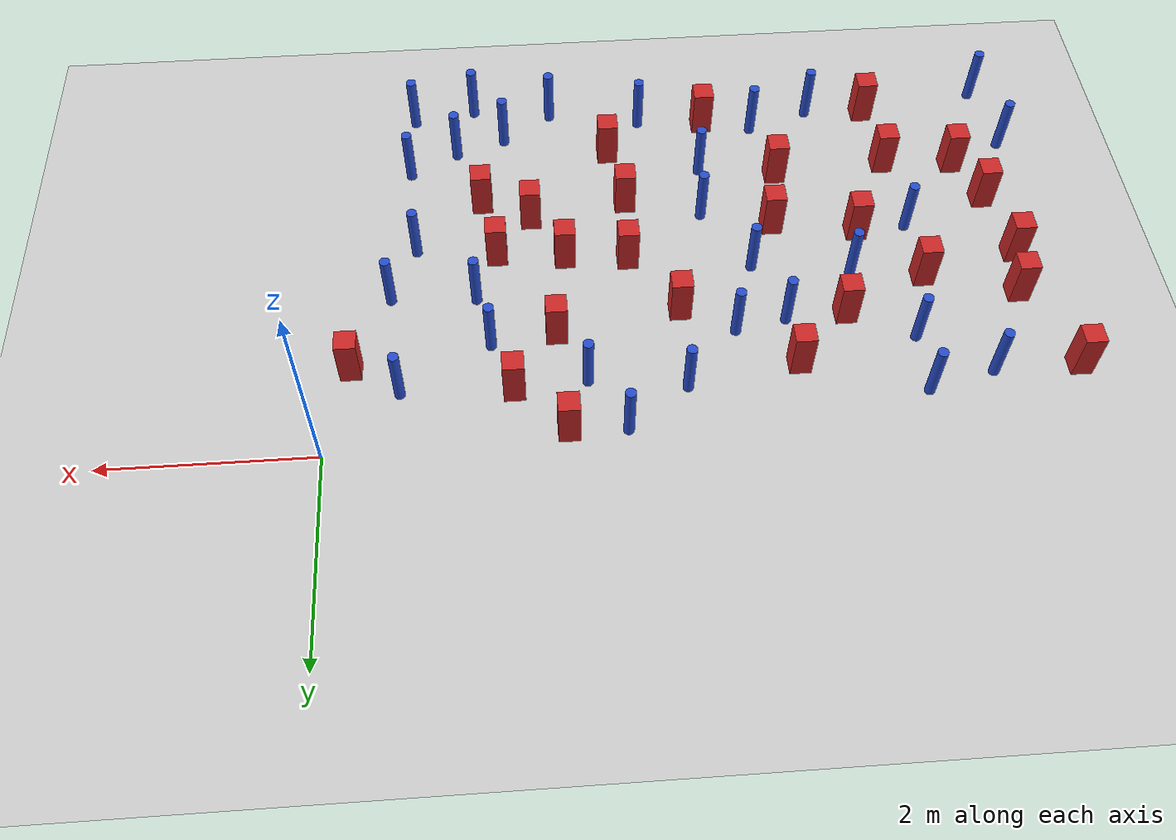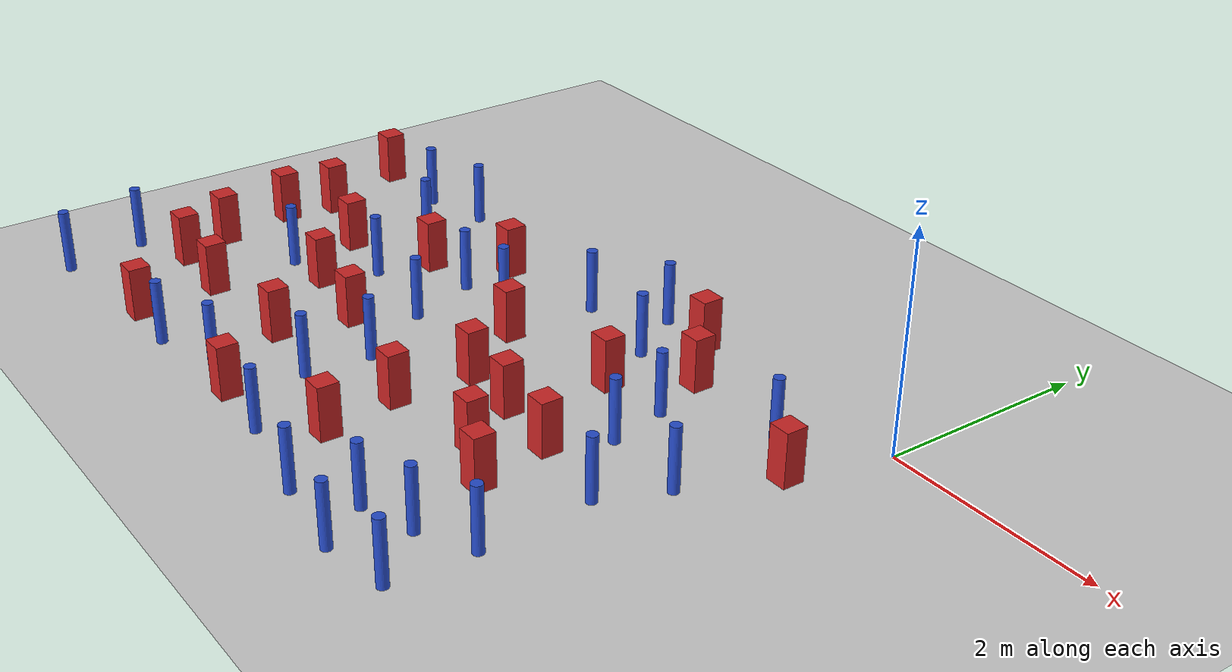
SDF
<sdf version="1.6">
 <world name="default">
  <model name="ground_plane">
   <static>1</static>
   <link name="link">
    <collision name="collision">
     <geometry><plane><normal>0 0 1</normal><size>100 100</size></plane></geometry>
     <surface><friction><ode><mu>100</mu><mu2>50</mu2></ode></friction></surface>
    </collision>
    <visual name="visual">
     <cast_shadows>0</cast_shadows>
     <geometry><plane><normal>0 0 1</normal><size>100 100</size></plane></geometry>
     <material>
      <ambient>1.0 1.0 1.0 1.0</ambient>
      <diffuse>0.8 0.8 0.8 1.0</diffuse>
      <specular>0.01 0.01 0.01 1.000000</specular>
     </material>
    </visual>
   </link>
  </model>
  <model name="square_post_obstacle0">
   <static>true</static>
   <pose>-5.72920448468 -1.64838649978 1.91545236811e-07 -7.35059704564e-06 1.12565212e-07 2.39332434364e-05</pose>
   <link name="link">
    <pose>0 0 0.25 0 -0 0</pose>
    <inertial>
     <mass>100</mass>
     <inertia>
      <ixx>0.166667</ixx>
      <ixy>0</ixy>
      <ixz>0</ixz>
      <iyy>0.166667</iyy>
      <iyz>0</iyz>
      <izz>0.166667</izz>
     </inertia>
    </inertial>
    <collision name="collision"><geometry><box><size>.2 .2 .5</size></box></geometry></collision>
    <visual name="visual">
     <geometry><box><size>.2 .2 .5</size></box></geometry>
     <material>
      <script><name>Gazebo/Red</name><uri>file://media/materials/scripts/gazebo.material</uri></script>
     </material>
    </visual>
   </link>
  </model>
  <model name="square_post_obstacle10">
   <static>true</static>
   <pose>-2.15162310492 -1.19387111334 1.91545236811e-07 -7.35059704564e-06 1.12565212e-07 2.39332434364e-05</pose>
   <link name="link">
    <pose>0 0 0.25 0 -0 0</pose>
    <inertial>
     <mass>100</mass>
     <inertia>
      <ixx>0.166667</ixx>
      <ixy>0</ixy>
      <ixz>0</ixz>
      <iyy>0.166667</iyy>
      <iyz>0</iyz>
      <izz>0.166667</izz>
     </inertia>
    </inertial>
    <collision name="collision"><geometry><box><size>.2 .2 .5</size></box></geometry></collision>
    <visual name="visual">
     <geometry><box><size>.2 .2 .5</size></box></geometry>
     <material>
      <script><name>Gazebo/Red</name><uri>file://media/materials/scripts/gazebo.material</uri></script>
     </material>
    </visual>
   </link>
  </model>
  <model name="pole_obstacle8">
   <static>true</static>
   <pose>-5.04666065523 -1.76279516387 7.38925637345e-09 -8.471706928e-08 1.24976765134e-08 -1.74513093015e-07</pose>
   <link name="link">
    <pose>0 0 0.3 0 -0 0</pose>
    <inertial>
     <mass>1</mass>
     <inertia><ixx>0.145833</ixx><ixy>0</ixy><ixz>0</ixz><iyy>0.145833</iyy><iyz>0</iyz><izz>0.125</izz></inertia>
    </inertial>
    <collision name="collision">
     <geometry><cylinder><radius>0.05</radius><length>.6</length></cylinder></geometry>
    </collision>
    <visual name="visual">
     <geometry><cylinder><radius>0.05</radius><length>.6</length></cylinder></geometry>
     <material>
      <script><name>Gazebo/Blue</name><uri>file://media/materials/scripts/gazebo.material</uri></script>
     </material>
    </visual>
   </link>
  </model>
  <model name="square_post_obstacle17">
   <static>true</static>
   <pose>-3.33447959467 -1.3979767333 1.91545236811e-07 -7.35059704564e-06 1.12565212e-07 2.39332434364e-05</pose>
   <link name="link">
    <pose>0 0 0.25 0 -0 0</pose>
    <inertial>
     <mass>100</mass>
     <inertia>
      <ixx>0.166667</ixx>
      <ixy>0</ixy>
      <ixz>0</ixz>
      <iyy>0.166667</iyy>
      <iyz>0</iyz>
      <izz>0.166667</izz>
     </inertia>
    </inertial>
    <collision name="collision"><geometry><box><size>.2 .2 .5</size></box></geometry></collision>
    <visual name="visual">
     <geometry><box><size>.2 .2 .5</size></box></geometry>
     <material>
      <script><name>Gazebo/Red</name><uri>file://media/materials/scripts/gazebo.material</uri></script>
     </material>
    </visual>
   </link>
  </model>
  <model name="square_post_obstacle28">
   <static>true</static>
   <pose>-1.73148544945 -0.581434706259 1.91545236811e-07 -7.35059704564e-06 1.12565212e-07 2.39332434364e-05</pose>
   <link name="link">
    <pose>0 0 0.25 0 -0 0</pose>
    <inertial>
     <mass>100</mass>
     <inertia>
      <ixx>0.166667</ixx>
      <ixy>0</ixy>
      <ixz>0</ixz>
      <iyy>0.166667</iyy>
      <iyz>0</iyz>
      <izz>0.166667</izz>
     </inertia>
    </inertial>
    <collision name="collision"><geometry><box><size>.2 .2 .5</size></box></geometry></collision>
    <visual name="visual">
     <geometry><box><size>.2 .2 .5</size></box></geometry>
     <material>
      <script><name>Gazebo/Red</name><uri>file://media/materials/scripts/gazebo.material</uri></script>
     </material>
    </visual>
   </link>
  </model>
  <model name="pole_obstacle19">
   <static>true</static>
   <pose>-5.52111678165 -0.942819344106 7.38925637345e-09 -8.47170692799e-08 1.24976765038e-08 -1.74513093018e-07</pose>
   <link name="link">
    <pose>0 0 0.3 0 -0 0</pose>
    <inertial>
     <mass>1</mass>
     <inertia><ixx>0.145833</ixx><ixy>0</ixy><ixz>0</ixz><iyy>0.145833</iyy><iyz>0</iyz><izz>0.125</izz></inertia>
    </inertial>
    <collision name="collision">
     <geometry><cylinder><radius>0.05</radius><length>.6</length></cylinder></geometry>
    </collision>
    <visual name="visual">
     <geometry><cylinder><radius>0.05</radius><length>.6</length></cylinder></geometry>
     <material>
      <script><name>Gazebo/Blue</name><uri>file://media/materials/scripts/gazebo.material</uri></script>
     </material>
    </visual>
   </link>
  </model>
  <model name="pole_obstacle20">
   <static>true</static>
   <pose>-4.09395837599 -1.89209507379 7.38925637345e-09 -8.471706928e-08 1.24976765134e-08 -1.74513093015e-07</pose>
   <link name="link">
    <pose>0 0 0.3 0 -0 0</pose>
    <inertial>
     <mass>1</mass>
     <inertia><ixx>0.145833</ixx><ixy>0</ixy><ixz>0</ixz><iyy>0.145833</iyy><iyz>0</iyz><izz>0.125</izz></inertia>
    </inertial>
    <collision name="collision">
     <geometry><cylinder><radius>0.05</radius><length>.6</length></cylinder></geometry>
    </collision>
    <visual name="visual">
     <geometry><cylinder><radius>0.05</radius><length>.6</length></cylinder></geometry>
     <material>
      <script><name>Gazebo/Blue</name><uri>file://media/materials/scripts/gazebo.material</uri></script>
     </material>
    </visual>
   </link>
  </model>
  <model name="square_post_obstacle31">
   <static>true</static>
   <pose>-4.49965373307 -3.09009445018 1.91545236811e-07 -7.35059704564e-06 1.12565212e-07 2.39332434364e-05</pose>
   <link name="link">
    <pose>0 0 0.25 0 -0 0</pose>
    <inertial>
     <mass>100</mass>
     <inertia>
      <ixx>0.166667</ixx>
      <ixy>0</ixy>
      <ixz>0</ixz>
      <iyy>0.166667</iyy>
      <iyz>0</iyz>
      <izz>0.166667</izz>
     </inertia>
    </inertial>
    <collision name="collision"><geometry><box><size>.2 .2 .5</size></box></geometry></collision>
    <visual name="visual">
     <geometry><box><size>.2 .2 .5</size></box></geometry>
     <material>
      <script><name>Gazebo/Red</name><uri>file://media/materials/scripts/gazebo.material</uri></script>
     </material>
    </visual>
   </link>
  </model>
  <model name="pole_obstacle29">
   <static>true</static>
   <pose>-0.687403673384 -0.622167887087 7.38925637345e-09 -8.47170692799e-08 1.24976765008e-08 -1.7451309302e-07</pose>
   <link name="link">
    <pose>0 0 0.3 0 -0 0</pose>
    <inertial>
     <mass>1</mass>
     <inertia><ixx>0.145833</ixx><ixy>0</ixy><ixz>0</ixz><iyy>0.145833</iyy><iyz>0</iyz><izz>0.125</izz></inertia>
    </inertial>
    <collision name="collision">
     <geometry><cylinder><radius>0.05</radius><length>.6</length></cylinder></geometry>
    </collision>
    <visual name="visual">
     <geometry><cylinder><radius>0.05</radius><length>.6</length></cylinder></geometry>
     <material>
      <script><name>Gazebo/Blue</name><uri>file://media/materials/scripts/gazebo.material</uri></script>
     </material>
    </visual>
   </link>
  </model>
  <model name="pole_obstacle34">
   <static>true</static>
   <pose>-6.78365782289 -4.12250271945 7.38925637345e-09 -8.47170692796e-08 1.24976764786e-08 -1.74513093032e-07</pose>
   <link name="link">
    <pose>0 0 0.3 0 -0 0</pose>
    <inertial>
     <mass>1</mass>
     <inertia><ixx>0.145833</ixx><ixy>0</ixy><ixz>0</ixz><iyy>0.145833</iyy><iyz>0</iyz><izz>0.125</izz></inertia>
    </inertial>
    <collision name="collision">
     <geometry><cylinder><radius>0.05</radius><length>.6</length></cylinder></geometry>
    </collision>
    <visual name="visual">
     <geometry><cylinder><radius>0.05</radius><length>.6</length></cylinder></geometry>
     <material>
      <script><name>Gazebo/Blue</name><uri>file://media/materials/scripts/gazebo.material</uri></script>
     </material>
    </visual>
   </link>
  </model>
  <model name="pole_obstacle35">
   <static>true</static>
   <pose>-3.73288253168 -3.20610702957 7.38925637345e-09 -8.47170692798e-08 1.24976764939e-08 -1.74513093025e-07</pose>
   <link name="link">
    <pose>0 0 0.3 0 -0 0</pose>
    <inertial>
     <mass>1</mass>
     <inertia><ixx>0.145833</ixx><ixy>0</ixy><ixz>0</ixz><iyy>0.145833</iyy><iyz>0</iyz><izz>0.125</izz></inertia>
    </inertial>
    <collision name="collision">
     <geometry><cylinder><radius>0.05</radius><length>.6</length></cylinder></geometry>
    </collision>
    <visual name="visual">
     <geometry><cylinder><radius>0.05</radius><length>.6</length></cylinder></geometry>
     <material>
      <script><name>Gazebo/Blue</name><uri>file://media/materials/scripts/gazebo.material</uri></script>
     </material>
    </visual>
   </link>
  </model>
  <model name="pole_obstacle36">
   <static>true</static>
   <pose>-3.31737687525 -0.521444200236 7.38925637345e-09 -8.471706928e-08 1.24976765186e-08 -1.74513093012e-07</pose>
   <link name="link">
    <pose>0 0 0.3 0 -0 0</pose>
    <inertial>
     <mass>1</mass>
     <inertia><ixx>0.145833</ixx><ixy>0</ixy><ixz>0</ixz><iyy>0.145833</iyy><iyz>0</iyz><izz>0.125</izz></inertia>
    </inertial>
    <collision name="collision">
     <geometry><cylinder><radius>0.05</radius><length>.6</length></cylinder></geometry>
    </collision>
    <visual name="visual">
     <geometry><cylinder><radius>0.05</radius><length>.6</length></cylinder></geometry>
     <material>
      <script><name>Gazebo/Blue</name><uri>file://media/materials/scripts/gazebo.material</uri></script>
     </material>
    </visual>
   </link>
  </model>
  <model name="pole_obstacle42">
   <static>true</static>
   <pose>-6.15092046541 -0.501168692159 7.38925637345e-09 -8.47170692798e-08 1.24976765005e-08 -1.74513093021e-07</pose>
   <link name="link">
    <pose>0 0 0.3 0 -0 0</pose>
    <inertial>
     <mass>1</mass>
     <inertia><ixx>0.145833</ixx><ixy>0</ixy><ixz>0</ixz><iyy>0.145833</iyy><iyz>0</iyz><izz>0.125</izz></inertia>
    </inertial>
    <collision name="collision">
     <geometry><cylinder><radius>0.05</radius><length>.6</length></cylinder></geometry>
    </collision>
    <visual name="visual">
     <geometry><cylinder><radius>0.05</radius><length>.6</length></cylinder></geometry>
     <material>
      <script><name>Gazebo/Blue</name><uri>file://media/materials/scripts/gazebo.material</uri></script>
     </material>
    </visual>
   </link>
  </model>
  <model name="square_post_obstacle44">
   <static>true</static>
   <pose>-5.62964949551 -3.16195798324 1.91545236811e-07 -7.35059704564e-06 1.12565212e-07 2.39332434364e-05</pose>
   <link name="link">
    <pose>0 0 0.25 0 -0 0</pose>
    <inertial>
     <mass>100</mass>
     <inertia>
      <ixx>0.166667</ixx>
      <ixy>0</ixy>
      <ixz>0</ixz>
      <iyy>0.166667</iyy>
      <iyz>0</iyz>
      <izz>0.166667</izz>
     </inertia>
    </inertial>
    <collision name="collision"><geometry><box><size>.2 .2 .5</size></box></geometry></collision>
    <visual name="visual">
     <geometry><box><size>.2 .2 .5</size></box></geometry>
     <material>
      <script><name>Gazebo/Red</name><uri>file://media/materials/scripts/gazebo.material</uri></script>
     </material>
    </visual>
   </link>
  </model>
  <model name="square_post_obstacle45">
   <static>true</static>
   <pose>-2.2012388608 -0.115494778639 1.91545236811e-07 -7.35059704564e-06 1.12565212e-07 2.39332434364e-05</pose>
   <link name="link">
    <pose>0 0 0.25 0 -0 0</pose>
    <inertial>
     <mass>100</mass>
     <inertia>
      <ixx>0.166667</ixx>
      <ixy>0</ixy>
      <ixz>0</ixz>
      <iyy>0.166667</iyy>
      <iyz>0</iyz>
      <izz>0.166667</izz>
     </inertia>
    </inertial>
    <collision name="collision"><geometry><box><size>.2 .2 .5</size></box></geometry></collision>
    <visual name="visual">
     <geometry><box><size>.2 .2 .5</size></box></geometry>
     <material>
      <script><name>Gazebo/Red</name><uri>file://media/materials/scripts/gazebo.material</uri></script>
     </material>
    </visual>
   </link>
  </model>
  <model name="pole_obstacle56">
   <static>true</static>
   <pose>-0.594704471884 -1.71230368563 7.38925637345e-09 -8.47170692799e-08 1.24976765033e-08 -1.7451309302e-07</pose>
   <link name="link">
    <pose>0 0 0.3 0 -0 0</pose>
    <inertial>
     <mass>1</mass>
     <inertia><ixx>0.145833</ixx><ixy>0</ixy><ixz>0</ixz><iyy>0.145833</iyy><iyz>0</iyz><izz>0.125</izz></inertia>
    </inertial>
    <collision name="collision">
     <geometry><cylinder><radius>0.05</radius><length>.6</length></cylinder></geometry>
    </collision>
    <visual name="visual">
     <geometry><cylinder><radius>0.05</radius><length>.6</length></cylinder></geometry>
     <material>
      <script><name>Gazebo/Blue</name><uri>file://media/materials/scripts/gazebo.material</uri></script>
     </material>
    </visual>
   </link>
  </model>
  <model name="pole_obstacle64">
   <static>true</static>
   <pose>-3.17033049402 -3.93762024587 7.38925637345e-09 -8.47170692798e-08 1.24976764939e-08 -1.74513093025e-07</pose>
   <link name="link">
    <pose>0 0 0.3 0 -0 0</pose>
    <inertial>
     <mass>1</mass>
     <inertia><ixx>0.145833</ixx><ixy>0</ixy><ixz>0</ixz><iyy>0.145833</iyy><iyz>0</iyz><izz>0.125</izz></inertia>
    </inertial>
    <collision name="collision">
     <geometry><cylinder><radius>0.05</radius><length>.6</length></cylinder></geometry>
    </collision>
    <visual name="visual">
     <geometry><cylinder><radius>0.05</radius><length>.6</length></cylinder></geometry>
     <material>
      <script><name>Gazebo/Blue</name><uri>file://media/materials/scripts/gazebo.material</uri></script>
     </material>
    </visual>
   </link>
  </model>
  <model name="pole_obstacle65">
   <static>true</static>
   <pose>-4.33033968657 -1.22837742214 7.38925637345e-09 -8.471706928e-08 1.24976765134e-08 -1.74513093015e-07</pose>
   <link name="link">
    <pose>0 0 0.3 0 -0 0</pose>
    <inertial>
     <mass>1</mass>
     <inertia><ixx>0.145833</ixx><ixy>0</ixy><ixz>0</ixz><iyy>0.145833</iyy><iyz>0</iyz><izz>0.125</izz></inertia>
    </inertial>
    <collision name="collision">
     <geometry><cylinder><radius>0.05</radius><length>.6</length></cylinder></geometry>
    </collision>
    <visual name="visual">
     <geometry><cylinder><radius>0.05</radius><length>.6</length></cylinder></geometry>
     <material>
      <script><name>Gazebo/Blue</name><uri>file://media/materials/scripts/gazebo.material</uri></script>
     </material>
    </visual>
   </link>
  </model>
  <model name="square_post_obstacle74">
   <static>true</static>
   <pose>-5.55989128321 -3.92422061794 1.91545236811e-07 -7.35059704564e-06 1.12565212e-07 2.39332434364e-05</pose>
   <link name="link">
    <pose>0 0 0.25 0 -0 0</pose>
    <inertial>
     <mass>100</mass>
     <inertia>
      <ixx>0.166667</ixx>
      <ixy>0</ixy>
      <ixz>0</ixz>
      <iyy>0.166667</iyy>
      <iyz>0</iyz>
      <izz>0.166667</izz>
     </inertia>
    </inertial>
    <collision name="collision"><geometry><box><size>.2 .2 .5</size></box></geometry></collision>
    <visual name="visual">
     <geometry><box><size>.2 .2 .5</size></box></geometry>
     <material>
      <script><name>Gazebo/Red</name><uri>file://media/materials/scripts/gazebo.material</uri></script>
     </material>
    </visual>
   </link>
  </model>
  <model name="pole_obstacle73">
   <static>true</static>
   <pose>-5.69657453276 -2.30692473391 7.38925637345e-09 -8.47170692798e-08 1.24976764937e-08 -1.74513093023e-07</pose>
   <link name="link">
    <pose>0 0 0.3 0 -0 0</pose>
    <inertial>
     <mass>1</mass>
     <inertia><ixx>0.145833</ixx><ixy>0</ixy><ixz>0</ixz><iyy>0.145833</iyy><iyz>0</iyz><izz>0.125</izz></inertia>
    </inertial>
    <collision name="collision">
     <geometry><cylinder><radius>0.05</radius><length>.6</length></cylinder></geometry>
    </collision>
    <visual name="visual">
     <geometry><cylinder><radius>0.05</radius><length>.6</length></cylinder></geometry>
     <material>
      <script><name>Gazebo/Blue</name><uri>file://media/materials/scripts/gazebo.material</uri></script>
     </material>
    </visual>
   </link>
  </model>
  <model name="square_post_obstacle82">
   <static>true</static>
   <pose>-1.62501234831 -2.18435911279 1.91545236811e-07 -7.35059704564e-06 1.12565212e-07 2.39332434364e-05</pose>
   <link name="link">
    <pose>0 0 0.25 0 -0 0</pose>
    <inertial>
     <mass>100</mass>
     <inertia>
      <ixx>0.166667</ixx>
      <ixy>0</ixy>
      <ixz>0</ixz>
      <iyy>0.166667</iyy>
      <iyz>0</iyz>
      <izz>0.166667</izz>
     </inertia>
    </inertial>
    <collision name="collision"><geometry><box><size>.2 .2 .5</size></box></geometry></collision>
    <visual name="visual">
     <geometry><box><size>.2 .2 .5</size></box></geometry>
     <material>
      <script><name>Gazebo/Red</name><uri>file://media/materials/scripts/gazebo.material</uri></script>
     </material>
    </visual>
   </link>
  </model>
  <model name="pole_obstacle100">
   <static>true</static>
   <pose>-6.91055289313 -3.36562437993 7.38925637345e-09 -8.47170692798e-08 1.24976764937e-08 -1.74513093023e-07</pose>
   <link name="link">
    <pose>0 0 0.3 0 -0 0</pose>
    <inertial>
     <mass>1</mass>
     <inertia><ixx>0.145833</ixx><ixy>0</ixy><ixz>0</ixz><iyy>0.145833</iyy><iyz>0</iyz><izz>0.125</izz></inertia>
    </inertial>
    <collision name="collision">
     <geometry><cylinder><radius>0.05</radius><length>.6</length></cylinder></geometry>
    </collision>
    <visual name="visual">
     <geometry><cylinder><radius>0.05</radius><length>.6</length></cylinder></geometry>
     <material>
      <script><name>Gazebo/Blue</name><uri>file://media/materials/scripts/gazebo.material</uri></script>
     </material>
    </visual>
   </link>
  </model>
  <model name="square_post_obstacle90">
   <static>true</static>
   <pose>-1.49911255548 -2.87933829624 1.91545236811e-07 -7.35059704564e-06 1.12565212e-07 2.39332434364e-05</pose>
   <link name="link">
    <pose>0 0 0.25 0 -0 0</pose>
    <inertial>
     <mass>100</mass>
     <inertia>
      <ixx>0.166667</ixx>
      <ixy>0</ixy>
      <ixz>0</ixz>
      <iyy>0.166667</iyy>
      <iyz>0</iyz>
      <izz>0.166667</izz>
     </inertia>
    </inertial>
    <collision name="collision"><geometry><box><size>.2 .2 .5</size></box></geometry></collision>
    <visual name="visual">
     <geometry><box><size>.2 .2 .5</size></box></geometry>
     <material>
      <script><name>Gazebo/Red</name><uri>file://media/materials/scripts/gazebo.material</uri></script>
     </material>
    </visual>
   </link>
  </model>
  <model name="pole_obstacle113">
   <static>true</static>
   <pose>-0.822009932886 -4.09908080248 7.38925637345e-09 -8.471706928e-08 1.24976765086e-08 -1.74513093015e-07</pose>
   <link name="link">
    <pose>0 0 0.3 0 -0 0</pose>
    <inertial>
     <mass>1</mass>
     <inertia><ixx>0.145833</ixx><ixy>0</ixy><ixz>0</ixz><iyy>0.145833</iyy><iyz>0</iyz><izz>0.125</izz></inertia>
    </inertial>
    <collision name="collision">
     <geometry><cylinder><radius>0.05</radius><length>.6</length></cylinder></geometry>
    </collision>
    <visual name="visual">
     <geometry><cylinder><radius>0.05</radius><length>.6</length></cylinder></geometry>
     <material>
      <script><name>Gazebo/Blue</name><uri>file://media/materials/scripts/gazebo.material</uri></script>
     </material>
    </visual>
   </link>
  </model>
  <model name="square_post_obstacle101">
   <static>true</static>
   <pose>-6.33982332221 -3.11323257354 1.91545236811e-07 -7.35059704564e-06 1.12565212e-07 2.39332434364e-05</pose>
   <link name="link">
    <pose>0 0 0.25 0 -0 0</pose>
    <inertial>
     <mass>100</mass>
     <inertia>
      <ixx>0.166667</ixx>
      <ixy>0</ixy>
      <ixz>0</ixz>
      <iyy>0.166667</iyy>
      <iyz>0</iyz>
      <izz>0.166667</izz>
     </inertia>
    </inertial>
    <collision name="collision"><geometry><box><size>.2 .2 .5</size></box></geometry></collision>
    <visual name="visual">
     <geometry><box><size>.2 .2 .5</size></box></geometry>
     <material>
      <script><name>Gazebo/Red</name><uri>file://media/materials/scripts/gazebo.material</uri></script>
     </material>
    </visual>
   </link>
  </model>
  <model name="pole_obstacle118">
   <static>true</static>
   <pose>-1.2551986138 -3.59517480096 7.38925637345e-09 -8.47170692799e-08 1.24976765053e-08 -1.74513093017e-07</pose>
   <link name="link">
    <pose>0 0 0.3 0 -0 0</pose>
    <inertial>
     <mass>1</mass>
     <inertia><ixx>0.145833</ixx><ixy>0</ixy><ixz>0</ixz><iyy>0.145833</iyy><iyz>0</iyz><izz>0.125</izz></inertia>
    </inertial>
    <collision name="collision">
     <geometry><cylinder><radius>0.05</radius><length>.6</length></cylinder></geometry>
    </collision>
    <visual name="visual">
     <geometry><cylinder><radius>0.05</radius><length>.6</length></cylinder></geometry>
     <material>
      <script><name>Gazebo/Blue</name><uri>file://media/materials/scripts/gazebo.material</uri></script>
     </material>
    </visual>
   </link>
  </model>
  <model name="square_post_obstacle105">
   <static>true</static>
   <pose>-4.36935392854 -0.704250046938 1.91545236811e-07 -7.35059704564e-06 1.12565212e-07 2.39332434364e-05</pose>
   <link name="link">
    <pose>0 0 0.25 0 -0 0</pose>
    <inertial>
     <mass>100</mass>
     <inertia>
      <ixx>0.166667</ixx>
      <ixy>0</ixy>
      <ixz>0</ixz>
      <iyy>0.166667</iyy>
      <iyz>0</iyz>
      <izz>0.166667</izz>
     </inertia>
    </inertial>
    <collision name="collision"><geometry><box><size>.2 .2 .5</size></box></geometry></collision>
    <visual name="visual">
     <geometry><box><size>.2 .2 .5</size></box></geometry>
     <material>
      <script><name>Gazebo/Red</name><uri>file://media/materials/scripts/gazebo.material</uri></script>
     </material>
    </visual>
   </link>
  </model>
  <model name="pole_obstacle128">
   <static>true</static>
   <pose>-5.51521071678 -0.333640668244 7.38925637345e-09 -8.47170692798e-08 1.24976765003e-08 -1.7451309302e-07</pose>
   <link name="link">
    <pose>0 0 0.3 0 -0 0</pose>
    <inertial>
     <mass>1</mass>
     <inertia><ixx>0.145833</ixx><ixy>0</ixy><ixz>0</ixz><iyy>0.145833</iyy><iyz>0</iyz><izz>0.125</izz></inertia>
    </inertial>
    <collision name="collision">
     <geometry><cylinder><radius>0.05</radius><length>.6</length></cylinder></geometry>
    </collision>
    <visual name="visual">
     <geometry><cylinder><radius>0.05</radius><length>.6</length></cylinder></geometry>
     <material>
      <script><name>Gazebo/Blue</name><uri>file://media/materials/scripts/gazebo.material</uri></script>
     </material>
    </visual>
   </link>
  </model>
  <model name="pole_obstacle139">
   <static>true</static>
   <pose>-0.839858043781 -2.29835631425 7.38925637345e-09 -8.47170692799e-08 1.2497676509e-08 -1.74513093016e-07</pose>
   <link name="link">
    <pose>0 0 0.3 0 -0 0</pose>
    <inertial>
     <mass>1</mass>
     <inertia><ixx>0.145833</ixx><ixy>0</ixy><ixz>0</ixz><iyy>0.145833</iyy><iyz>0</iyz><izz>0.125</izz></inertia>
    </inertial>
    <collision name="collision">
     <geometry><cylinder><radius>0.05</radius><length>.6</length></cylinder></geometry>
    </collision>
    <visual name="visual">
     <geometry><cylinder><radius>0.05</radius><length>.6</length></cylinder></geometry>
     <material>
      <script><name>Gazebo/Blue</name><uri>file://media/materials/scripts/gazebo.material</uri></script>
     </material>
    </visual>
   </link>
  </model>
  <model name="square_post_obstacle124">
   <static>true</static>
   <pose>-3.83555400037 -3.87615551644 1.91545236811e-07 -7.35059704564e-06 1.12565212e-07 2.39332434364e-05</pose>
   <link name="link">
    <pose>0 0 0.25 0 -0 0</pose>
    <inertial>
     <mass>100</mass>
     <inertia>
      <ixx>0.166667</ixx>
      <ixy>0</ixy>
      <ixz>0</ixz>
      <iyy>0.166667</iyy>
      <iyz>0</iyz>
      <izz>0.166667</izz>
     </inertia>
    </inertial>
    <collision name="collision"><geometry><box><size>.2 .2 .5</size></box></geometry></collision>
    <visual name="visual">
     <geometry><box><size>.2 .2 .5</size></box></geometry>
     <material>
      <script><name>Gazebo/Red</name><uri>file://media/materials/scripts/gazebo.material</uri></script>
     </material>
    </visual>
   </link>
  </model>
  <model name="square_post_obstacle135">
   <static>true</static>
   <pose>-2.92892174715 -2.79552720551 1.91545236811e-07 -7.35059704564e-06 1.12565212e-07 2.39332434364e-05</pose>
   <link name="link">
    <pose>0 0 0.25 0 -0 0</pose>
    <inertial>
     <mass>100</mass>
     <inertia>
      <ixx>0.166667</ixx>
      <ixy>0</ixy>
      <ixz>0</ixz>
      <iyy>0.166667</iyy>
      <iyz>0</iyz>
      <izz>0.166667</izz>
     </inertia>
    </inertial>
    <collision name="collision"><geometry><box><size>.2 .2 .5</size></box></geometry></collision>
    <visual name="visual">
     <geometry><box><size>.2 .2 .5</size></box></geometry>
     <material>
      <script><name>Gazebo/Red</name><uri>file://media/materials/scripts/gazebo.material</uri></script>
     </material>
    </visual>
   </link>
  </model>
  <model name="square_post_obstacle137">
   <static>true</static>
   <pose>-1.97501166974 -2.64076929844 1.91545236811e-07 -7.35059704564e-06 1.12565212e-07 2.39332434364e-05</pose>
   <link name="link">
    <pose>0 0 0.25 0 -0 0</pose>
    <inertial>
     <mass>100</mass>
     <inertia>
      <ixx>0.166667</ixx>
      <ixy>0</ixy>
      <ixz>0</ixz>
      <iyy>0.166667</iyy>
      <iyz>0</iyz>
      <izz>0.166667</izz>
     </inertia>
    </inertial>
    <collision name="collision"><geometry><box><size>.2 .2 .5</size></box></geometry></collision>
    <visual name="visual">
     <geometry><box><size>.2 .2 .5</size></box></geometry>
     <material>
      <script><name>Gazebo/Red</name><uri>file://media/materials/scripts/gazebo.material</uri></script>
     </material>
    </visual>
   </link>
  </model>
  <model name="pole_obstacle150">
   <static>true</static>
   <pose>-2.73565164574 -0.0967825117481 7.38925637345e-09 -8.471706928e-08 1.24976765088e-08 -1.74513093017e-07</pose>
   <link name="link">
    <pose>0 0 0.3 0 -0 0</pose>
    <inertial>
     <mass>1</mass>
     <inertia><ixx>0.145833</ixx><ixy>0</ixy><ixz>0</ixz><iyy>0.145833</iyy><iyz>0</iyz><izz>0.125</izz></inertia>
    </inertial>
    <collision name="collision">
     <geometry><cylinder><radius>0.05</radius><length>.6</length></cylinder></geometry>
    </collision>
    <visual name="visual">
     <geometry><cylinder><radius>0.05</radius><length>.6</length></cylinder></geometry>
     <material>
      <script><name>Gazebo/Blue</name><uri>file://media/materials/scripts/gazebo.material</uri></script>
     </material>
    </visual>
   </link>
  </model>
  <model name="pole_obstacle152">
   <static>true</static>
   <pose>-1.53499499612 -1.11093284816 7.38925637345e-09 -8.471706928e-08 1.24976765079e-08 -1.74513093017e-07</pose>
   <link name="link">
    <pose>0 0 0.3 0 -0 0</pose>
    <inertial>
     <mass>1</mass>
     <inertia><ixx>0.145833</ixx><ixy>0</ixy><ixz>0</ixz><iyy>0.145833</iyy><iyz>0</iyz><izz>0.125</izz></inertia>
    </inertial>
    <collision name="collision">
     <geometry><cylinder><radius>0.05</radius><length>.6</length></cylinder></geometry>
    </collision>
    <visual name="visual">
     <geometry><cylinder><radius>0.05</radius><length>.6</length></cylinder></geometry>
     <material>
      <script><name>Gazebo/Blue</name><uri>file://media/materials/scripts/gazebo.material</uri></script>
     </material>
    </visual>
   </link>
  </model>
  <model name="pole_obstacle154">
   <static>true</static>
   <pose>-1.44291277133 -4.21281822961 7.38925637345e-09 -8.47170692799e-08 1.24976765033e-08 -1.74513093018e-07</pose>
   <link name="link">
    <pose>0 0 0.3 0 -0 0</pose>
    <inertial>
     <mass>1</mass>
     <inertia><ixx>0.145833</ixx><ixy>0</ixy><ixz>0</ixz><iyy>0.145833</iyy><iyz>0</iyz><izz>0.125</izz></inertia>
    </inertial>
    <collision name="collision">
     <geometry><cylinder><radius>0.05</radius><length>.6</length></cylinder></geometry>
    </collision>
    <visual name="visual">
     <geometry><cylinder><radius>0.05</radius><length>.6</length></cylinder></geometry>
     <material>
      <script><name>Gazebo/Blue</name><uri>file://media/materials/scripts/gazebo.material</uri></script>
     </material>
    </visual>
   </link>
  </model>
  <model name="square_post_obstacle146">
   <static>true</static>
   <pose>-5.19192630049 -2.27056486333 1.91545236811e-07 -7.35059704564e-06 1.12565212e-07 2.39332434364e-05</pose>
   <link name="link">
    <pose>0 0 0.25 0 -0 0</pose>
    <inertial>
     <mass>100</mass>
     <inertia>
      <ixx>0.166667</ixx>
      <ixy>0</ixy>
      <ixz>0</ixz>
      <iyy>0.166667</iyy>
      <iyz>0</iyz>
      <izz>0.166667</izz>
     </inertia>
    </inertial>
    <collision name="collision"><geometry><box><size>.2 .2 .5</size></box></geometry></collision>
    <visual name="visual">
     <geometry><box><size>.2 .2 .5</size></box></geometry>
     <material>
      <script><name>Gazebo/Red</name><uri>file://media/materials/scripts/gazebo.material</uri></script>
     </material>
    </visual>
   </link>
  </model>
  <model name="square_post_obstacle148">
   <static>true</static>
   <pose>-2.80865111883 -3.49568170958 1.91545236811e-07 -7.35059704564e-06 1.12565212e-07 2.39332434364e-05</pose>
   <link name="link">
    <pose>0 0 0.25 0 -0 0</pose>
    <inertial>
     <mass>100</mass>
     <inertia>
      <ixx>0.166667</ixx>
      <ixy>0</ixy>
      <ixz>0</ixz>
      <iyy>0.166667</iyy>
      <iyz>0</iyz>
      <izz>0.166667</izz>
     </inertia>
    </inertial>
    <collision name="collision"><geometry><box><size>.2 .2 .5</size></box></geometry></collision>
    <visual name="visual">
     <geometry><box><size>.2 .2 .5</size></box></geometry>
     <material>
      <script><name>Gazebo/Red</name><uri>file://media/materials/scripts/gazebo.material</uri></script>
     </material>
    </visual>
   </link>
  </model>
  <model name="square_post_obstacle156">
   <static>true</static>
   <pose>-6.54355280623 -2.61540261102 1.91545236811e-07 -7.35059704564e-06 1.12565212e-07 2.39332434364e-05</pose>
   <link name="link">
    <pose>0 0 0.25 0 -0 0</pose>
    <inertial>
     <mass>100</mass>
     <inertia>
      <ixx>0.166667</ixx>
      <ixy>0</ixy>
      <ixz>0</ixz>
      <iyy>0.166667</iyy>
      <iyz>0</iyz>
      <izz>0.166667</izz>
     </inertia>
    </inertial>
    <collision name="collision"><geometry><box><size>.2 .2 .5</size></box></geometry></collision>
    <visual name="visual">
     <geometry><box><size>.2 .2 .5</size></box></geometry>
     <material>
      <script><name>Gazebo/Red</name><uri>file://media/materials/scripts/gazebo.material</uri></script>
     </material>
    </visual>
   </link>
  </model>
  <model name="pole_obstacle166">
   <static>true</static>
   <pose>-0.780032762352 -3.33862996159 7.38925637345e-09 -8.47170692799e-08 1.2497676509e-08 -1.74513093016e-07</pose>
   <link name="link">
    <pose>0 0 0.3 0 -0 0</pose>
    <inertial>
     <mass>1</mass>
     <inertia><ixx>0.145833</ixx><ixy>0</ixy><ixz>0</ixz><iyy>0.145833</iyy><iyz>0</iyz><izz>0.125</izz></inertia>
    </inertial>
    <collision name="collision">
     <geometry><cylinder><radius>0.05</radius><length>.6</length></cylinder></geometry>
    </collision>
    <visual name="visual">
     <geometry><cylinder><radius>0.05</radius><length>.6</length></cylinder></geometry>
     <material>
      <script><name>Gazebo/Blue</name><uri>file://media/materials/scripts/gazebo.material</uri></script>
     </material>
    </visual>
   </link>
  </model>
  <model name="square_post_obstacle159">
   <static>true</static>
   <pose>-4.89996136254 -1.2486953689 1.91545236811e-07 -7.35059704564e-06 1.12565212e-07 2.39332434364e-05</pose>
   <link name="link">
    <pose>0 0 0.25 0 -0 0</pose>
    <inertial>
     <mass>100</mass>
     <inertia>
      <ixx>0.166667</ixx>
      <ixy>0</ixy>
      <ixz>0</ixz>
      <iyy>0.166667</iyy>
      <iyz>0</iyz>
      <izz>0.166667</izz>
     </inertia>
    </inertial>
    <collision name="collision"><geometry><box><size>.2 .2 .5</size></box></geometry></collision>
    <visual name="visual">
     <geometry><box><size>.2 .2 .5</size></box></geometry>
     <material>
      <script><name>Gazebo/Red</name><uri>file://media/materials/scripts/gazebo.material</uri></script>
     </material>
    </visual>
   </link>
  </model>
  <model name="pole_obstacle168">
   <static>true</static>
   <pose>-1.74690401814 -3.76327093614 7.38925637345e-09 -8.47170692799e-08 1.24976765053e-08 -1.74513093017e-07</pose>
   <link name="link">
    <pose>0 0 0.3 0 -0 0</pose>
    <inertial>
     <mass>1</mass>
     <inertia><ixx>0.145833</ixx><ixy>0</ixy><ixz>0</ixz><iyy>0.145833</iyy><iyz>0</iyz><izz>0.125</izz></inertia>
    </inertial>
    <collision name="collision">
     <geometry><cylinder><radius>0.05</radius><length>.6</length></cylinder></geometry>
    </collision>
    <visual name="visual">
     <geometry><cylinder><radius>0.05</radius><length>.6</length></cylinder></geometry>
     <material>
      <script><name>Gazebo/Blue</name><uri>file://media/materials/scripts/gazebo.material</uri></script>
     </material>
    </visual>
   </link>
  </model>
  <model name="square_post_obstacle161">
   <static>true</static>
   <pose>-2.28486765367 -2.10804352933 1.91545236811e-07 -7.35059704564e-06 1.12565212e-07 2.39332434364e-05</pose>
   <link name="link">
    <pose>0 0 0.25 0 -0 0</pose>
    <inertial>
     <mass>100</mass>
     <inertia>
      <ixx>0.166667</ixx>
      <ixy>0</ixy>
      <ixz>0</ixz>
      <iyy>0.166667</iyy>
      <iyz>0</iyz>
      <izz>0.166667</izz>
     </inertia>
    </inertial>
    <collision name="collision"><geometry><box><size>.2 .2 .5</size></box></geometry></collision>
    <visual name="visual">
     <geometry><box><size>.2 .2 .5</size></box></geometry>
     <material>
      <script><name>Gazebo/Red</name><uri>file://media/materials/scripts/gazebo.material</uri></script>
     </material>
    </visual>
   </link>
  </model>
  <model name="pole_obstacle180">
   <static>true</static>
   <pose>-4.34703689242 -3.76501518542 7.38925637345e-09 -8.47170692798e-08 1.24976764937e-08 -1.74513093023e-07</pose>
   <link name="link">
    <pose>0 0 0.3 0 -0 0</pose>
    <inertial>
     <mass>1</mass>
     <inertia><ixx>0.145833</ixx><ixy>0</ixy><ixz>0</ixz><iyy>0.145833</iyy><iyz>0</iyz><izz>0.125</izz></inertia>
    </inertial>
    <collision name="collision">
     <geometry><cylinder><radius>0.05</radius><length>.6</length></cylinder></geometry>
    </collision>
    <visual name="visual">
     <geometry><cylinder><radius>0.05</radius><length>.6</length></cylinder></geometry>
     <material>
      <script><name>Gazebo/Blue</name><uri>file://media/materials/scripts/gazebo.material</uri></script>
     </material>
    </visual>
   </link>
  </model>
  <model name="square_post_obstacle172">
   <static>true</static>
   <pose>-2.89481289624 -2.05568614735 1.91545236811e-07 -7.35059704564e-06 1.12565212e-07 2.39332434364e-05</pose>
   <link name="link">
    <pose>0 0 0.25 0 -0 0</pose>
    <inertial>
     <mass>100</mass>
     <inertia>
      <ixx>0.166667</ixx>
      <ixy>0</ixy>
      <ixz>0</ixz>
      <iyy>0.166667</iyy>
      <iyz>0</iyz>
      <izz>0.166667</izz>
     </inertia>
    </inertial>
    <collision name="collision"><geometry><box><size>.2 .2 .5</size></box></geometry></collision>
    <visual name="visual">
     <geometry><box><size>.2 .2 .5</size></box></geometry>
     <material>
      <script><name>Gazebo/Red</name><uri>file://media/materials/scripts/gazebo.material</uri></script>
     </material>
    </visual>
   </link>
  </model>
  <model name="square_post_obstacle182">
   <static>true</static>
   <pose>-6.5982516913 -1.39474981262 1.91545236811e-07 -7.35059704564e-06 1.12565212e-07 2.39332434364e-05</pose>
   <link name="link">
    <pose>0 0 0.25 0 -0 0</pose>
    <inertial>
     <mass>100</mass>
     <inertia>
      <ixx>0.166667</ixx>
      <ixy>0</ixy>
      <ixz>0</ixz>
      <iyy>0.166667</iyy>
      <iyz>0</iyz>
      <izz>0.166667</izz>
     </inertia>
    </inertial>
    <collision name="collision"><geometry><box><size>.2 .2 .5</size></box></geometry></collision>
    <visual name="visual">
     <geometry><box><size>.2 .2 .5</size></box></geometry>
     <material>
      <script><name>Gazebo/Red</name><uri>file://media/materials/scripts/gazebo.material</uri></script>
     </material>
    </visual>
   </link>
  </model>
  <model name="square_post_obstacle185">
   <static>true</static>
   <pose>-0.239795291793 -0.910453386113 1.91545236811e-07 -7.35059704564e-06 1.12565212e-07 2.39332434364e-05</pose>
   <link name="link">
    <pose>0 0 0.25 0 -0 0</pose>
    <inertial>
     <mass>100</mass>
     <inertia>
      <ixx>0.166667</ixx>
      <ixy>0</ixy>
      <ixz>0</ixz>
      <iyy>0.166667</iyy>
      <iyz>0</iyz>
      <izz>0.166667</izz>
     </inertia>
    </inertial>
    <collision name="collision"><geometry><box><size>.2 .2 .5</size></box></geometry></collision>
    <visual name="visual">
     <geometry><box><size>.2 .2 .5</size></box></geometry>
     <material>
      <script><name>Gazebo/Red</name><uri>file://media/materials/scripts/gazebo.material</uri></script>
     </material>
    </visual>
   </link>
  </model>
  <model name="square_post_obstacle197">
   <static>true</static>
   <pose>-4.36541114398 -2.40770000374 1.91545236811e-07 -7.35059704564e-06 1.12565212e-07 2.39332434364e-05</pose>
   <link name="link">
    <pose>0 0 0.25 0 -0 0</pose>
    <inertial>
     <mass>100</mass>
     <inertia>
      <ixx>0.166667</ixx>
      <ixy>0</ixy>
      <ixz>0</ixz>
      <iyy>0.166667</iyy>
      <iyz>0</iyz>
      <izz>0.166667</izz>
     </inertia>
    </inertial>
    <collision name="collision"><geometry><box><size>.2 .2 .5</size></box></geometry></collision>
    <visual name="visual">
     <geometry><box><size>.2 .2 .5</size></box></geometry>
     <material>
      <script><name>Gazebo/Red</name><uri>file://media/materials/scripts/gazebo.material</uri></script>
     </material>
    </visual>
   </link>
  </model>
  <model name="square_post_obstacle198">
   <static>true</static>
   <pose>-6.95349605323 -0.516276897721 1.91545236811e-07 -7.35059704564e-06 1.12565212e-07 2.39332434364e-05</pose>
   <link name="link">
    <pose>0 0 0.25 0 -0 0</pose>
    <inertial>
     <mass>100</mass>
     <inertia>
      <ixx>0.166667</ixx>
      <ixy>0</ixy>
      <ixz>0</ixz>
      <iyy>0.166667</iyy>
      <iyz>0</iyz>
      <izz>0.166667</izz>
     </inertia>
    </inertial>
    <collision name="collision"><geometry><box><size>.2 .2 .5</size></box></geometry></collision>
    <visual name="visual">
     <geometry><box><size>.2 .2 .5</size></box></geometry>
     <material>
      <script><name>Gazebo/Red</name><uri>file://media/materials/scripts/gazebo.material</uri></script>
     </material>
    </visual>
   </link>
  </model>
  <model name="square_post_obstacle201">
   <static>true</static>
   <pose>-6.68577529853 -1.88828573024 1.91545236811e-07 -7.35059704564e-06 1.12565212e-07 2.39332434364e-05</pose>
   <link name="link">
    <pose>0 0 0.25 0 -0 0</pose>
    <inertial>
     <mass>100</mass>
     <inertia>
      <ixx>0.166667</ixx>
      <ixy>0</ixy>
      <ixz>0</ixz>
      <iyy>0.166667</iyy>
      <iyz>0</iyz>
      <izz>0.166667</izz>
     </inertia>
    </inertial>
    <collision name="collision"><geometry><box><size>.2 .2 .5</size></box></geometry></collision>
    <visual name="visual">
     <geometry><box><size>.2 .2 .5</size></box></geometry>
     <material>
      <script><name>Gazebo/Red</name><uri>file://media/materials/scripts/gazebo.material</uri></script>
     </material>
    </visual>
   </link>
  </model>
  <model name="pole_obstacle191">
   <static>true</static>
   <pose>-4.97042673742 -3.97098414764 7.38925637345e-09 -8.47170692799e-08 1.24976764984e-08 -1.7451309302e-07</pose>
   <link name="link">
    <pose>0 0 0.3 0 -0 0</pose>
    <inertial>
     <mass>1</mass>
     <inertia><ixx>0.145833</ixx><ixy>0</ixy><ixz>0</ixz><iyy>0.145833</iyy><iyz>0</iyz><izz>0.125</izz></inertia>
    </inertial>
    <collision name="collision">
     <geometry><cylinder><radius>0.05</radius><length>.6</length></cylinder></geometry>
    </collision>
    <visual name="visual">
     <geometry><cylinder><radius>0.05</radius><length>.6</length></cylinder></geometry>
     <material>
      <script><name>Gazebo/Blue</name><uri>file://media/materials/scripts/gazebo.material</uri></script>
     </material>
    </visual>
   </link>
  </model>
  <model name="pole_obstacle192">
   <static>true</static>
   <pose>-1.41224754054 -1.66573999481 7.38925637345e-09 -8.471706928e-08 1.24976765079e-08 -1.74513093017e-07</pose>
   <link name="link">
    <pose>0 0 0.3 0 -0 0</pose>
    <inertial>
     <mass>1</mass>
     <inertia><ixx>0.145833</ixx><ixy>0</ixy><ixz>0</ixz><iyy>0.145833</iyy><iyz>0</iyz><izz>0.125</izz></inertia>
    </inertial>
    <collision name="collision">
     <geometry><cylinder><radius>0.05</radius><length>.6</length></cylinder></geometry>
    </collision>
    <visual name="visual">
     <geometry><cylinder><radius>0.05</radius><length>.6</length></cylinder></geometry>
     <material>
      <script><name>Gazebo/Blue</name><uri>file://media/materials/scripts/gazebo.material</uri></script>
     </material>
    </visual>
   </link>
  </model>
  <model name="pole_obstacle204">
   <static>true</static>
   <pose>-2.23947799421 -4.10240874036 7.38925637345e-09 -8.47170692798e-08 1.24976765033e-08 -1.74513093019e-07</pose>
   <link name="link">
    <pose>0 0 0.3 0 -0 0</pose>
    <inertial>
     <mass>1</mass>
     <inertia><ixx>0.145833</ixx><ixy>0</ixy><ixz>0</ixz><iyy>0.145833</iyy><iyz>0</iyz><izz>0.125</izz></inertia>
    </inertial>
    <collision name="collision">
     <geometry><cylinder><radius>0.05</radius><length>.6</length></cylinder></geometry>
    </collision>
    <visual name="visual">
     <geometry><cylinder><radius>0.05</radius><length>.6</length></cylinder></geometry>
     <material>
      <script><name>Gazebo/Blue</name><uri>file://media/materials/scripts/gazebo.material</uri></script>
     </material>
    </visual>
   </link>
  </model>
  <model name="pole_obstacle207">
   <static>true</static>
   <pose>-3.68116263617 -2.59517326163 7.38925637345e-09 -8.47170692798e-08 1.24976764939e-08 -1.74513093025e-07</pose>
   <link name="link">
    <pose>0 0 0.3 0 -0 0</pose>
    <inertial>
     <mass>1</mass>
     <inertia><ixx>0.145833</ixx><ixy>0</ixy><ixz>0</ixz><iyy>0.145833</iyy><iyz>0</iyz><izz>0.125</izz></inertia>
    </inertial>
    <collision name="collision">
     <geometry><cylinder><radius>0.05</radius><length>.6</length></cylinder></geometry>
    </collision>
    <visual name="visual">
     <geometry><cylinder><radius>0.05</radius><length>.6</length></cylinder></geometry>
     <material>
      <script><name>Gazebo/Blue</name><uri>file://media/materials/scripts/gazebo.material</uri></script>
     </material>
    </visual>
   </link>
  </model>
  <model name="pole_obstacle218">
   <static>true</static>
   <pose>-3.83812999043 -1.12756997922 7.38925637345e-09 -8.47170692796e-08 1.24976764713e-08 -1.74513093037e-07</pose>
   <link name="link">
    <pose>0 0 0.3 0 -0 0</pose>
    <inertial>
     <mass>1</mass>
     <inertia><ixx>0.145833</ixx><ixy>0</ixy><ixz>0</ixz><iyy>0.145833</iyy><iyz>0</iyz><izz>0.125</izz></inertia>
    </inertial>
    <collision name="collision">
     <geometry><cylinder><radius>0.05</radius><length>.6</length></cylinder></geometry>
    </collision>
    <visual name="visual">
     <geometry><cylinder><radius>0.05</radius><length>.6</length></cylinder></geometry>
     <material>
      <script><name>Gazebo/Blue</name><uri>file://media/materials/scripts/gazebo.material</uri></script>
     </material>
    </visual>
   </link>
  </model>
  <model name="pole_obstacle229">
   <static>true</static>
   <pose>-2.40880999043 -0.645419979219 7.38925637345e-09 -8.47170692801e-08 1.2497676512e-08 -1.74513093015e-07</pose>
   <link name="link">
    <pose>0 0 0.3 0 -0 0</pose>
    <inertial>
     <mass>1</mass>
     <inertia><ixx>0.145833</ixx><ixy>0</ixy><ixz>0</ixz><iyy>0.145833</iyy><iyz>0</iyz><izz>0.125</izz></inertia>
    </inertial>
    <collision name="collision">
     <geometry><cylinder><radius>0.05</radius><length>.6</length></cylinder></geometry>
    </collision>
    <visual name="visual">
     <geometry><cylinder><radius>0.05</radius><length>.6</length></cylinder></geometry>
     <material>
      <script><name>Gazebo/Blue</name><uri>file://media/materials/scripts/gazebo.material</uri></script>
     </material>
    </visual>
   </link>
  </model>
 </world>
</sdf>
